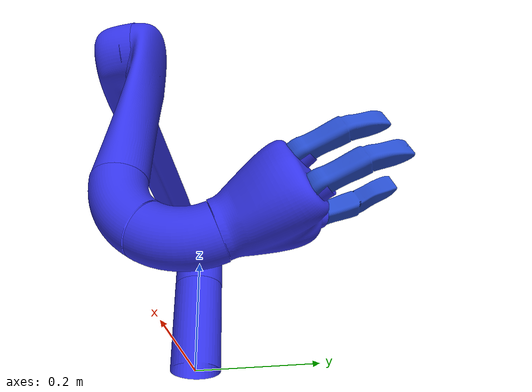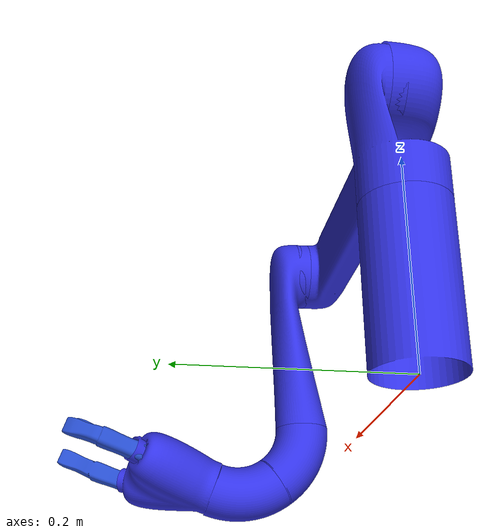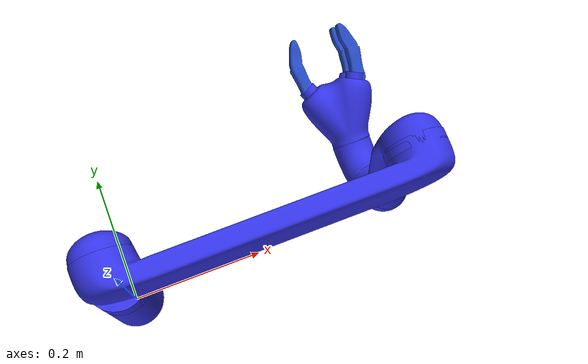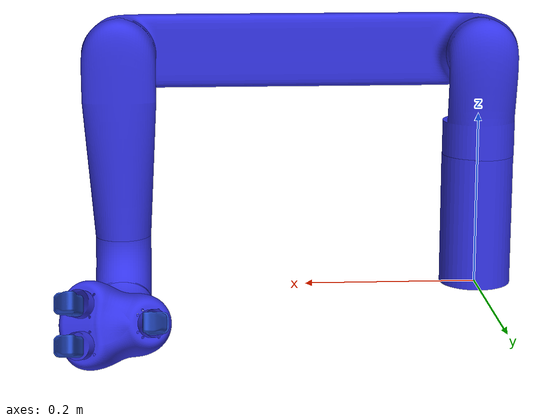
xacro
<?xml version="1.0"?>
<robot
	xmlns:xacro="http://ros.org/wiki/xacro"
	name="jaco_standalone">

  	<link name="base_link"></link>

	  <joint name="base_joint" type="fixed">
		    <parent link="base_link" />
		    <child link="jaco_base_link" />
		    <origin xyz="0 0 0" />
	  </joint>

	<include filename="$(find jaco_description)/urdf/gazebo/jaco.urdf.xacro" />

</robot>

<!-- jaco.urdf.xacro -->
<robot name="jaco"
  xmlns:xacro="http://ros.org/wiki/xacro">

 <xacro:property name="inertia" value="1" />
  <xacro:property name="finger_inertia" value="1" />

	<gazebo>

    <plugin name="gazebo_ros_controller_manager" filename="libgazebo_ros_controller_manager.so">
      <alwaysOn>true</alwaysOn>
		<updateRate>1000.0</updateRate>
		<robotParam>robot_description</robotParam>

    </plugin>
	</gazebo>

	<include filename="$(find jaco_description)/urdf/gazebo/jaco.gazebo.xacro" />
	<include filename="$(find jaco_description)/urdf/gazebo/jaco.transmissions.xacro" />

	<material name="JacoGrey">
	<color rgba="0.2 0.2 0.9 1.0"/>
	</material>

	<!-- The base joint & link -->

	<link name="jaco_base_link">
		<inertial>
			<mass value="1" />
			<!--origin xyz="0 0 -0.0525" rpy="0 0 0"/-->
          		<origin xyz="0 0 0.0" rpy="0 0 0"/>
			<inertia ixx="${inertia}"  ixy="0"  ixz="0" iyy="${inertia}" iyz="0" izz="${inertia}" />
		</inertial>
		<visual>
			<material name="JacoGrey" />
			<!--origin xyz="0 0 -0.0525" rpy="0 0 0"/-->
			<geometry>
				<mesh filename="package://jaco_description/meshes/joint_1.stl"
				scale="0.001 0.001 0.001"/>
			</geometry>
		</visual>
		<collision>
			<!--origin xyz="0 0 -0.0525" rpy="0 0 0"/-->
			<geometry>
				<mesh filename="package://jaco_description/meshes/joint_1.stl"
				scale="0.001 0.001 0.001"/>
			</geometry>
		</collision>
	</link>
	<gazebo reference="jaco_base_link">
		<material>Gazebo/Yellow</material>
		<turnGravityOff>true</turnGravityOff>
	</gazebo>

	<!-- First revolute joint & link -->

	<joint name="jaco_joint_1" type="revolute">
		<!--origin xyz="0 0 0.2102" rpy="0 0 0"/-->
        	<origin xyz="0 0 0.2725" rpy="0 0 0"/>
		<axis xyz="0 0 -1" rpy="0 0 0"/>
		<parent link="jaco_base_link"/>
		<child link="jaco_link_1"/>
		<limit lower="-3.1415926535897931" upper="3.1415926535897931" effort="30" velocity="5"/>
	</joint>
	<link name="jaco_link_1">
		<inertial>
			<mass value="1" />

			<inertia ixx="${inertia}"  ixy="0"  ixz="0" iyy="${inertia}" iyz="0" izz="${inertia}" />
			<origin/>
		</inertial>
		<visual>
			<material name="JacoGrey" />
			<origin xyz="0 0 -0.12" rpy="0 0 -1.570796327"/>
			<geometry>
				<mesh filename="package://jaco_description/meshes/joint_2.stl"
				scale="0.001 0.001 0.001"/>
			</geometry>
		</visual>
		<collision>
			<origin xyz="0 0 -0.12" rpy="0 0 -1.570796327"/>
			<geometry>
				<mesh filename="package://jaco_description/meshes/joint_2.stl"
				scale="0.001 0.001 0.001"/>
			</geometry>
		</collision>
	</link>
	<gazebo reference="jaco_link_1">
		<material>Gazebo/Red</material>
		<turnGravityOff>true</turnGravityOff>
	</gazebo>

	<!-- Second revolute joint & link -->

	<joint name="jaco_joint_2" type="revolute">
		<origin xyz="0 0 0" rpy="-1.570796327 0 0"/>
		<axis xyz="0 0 1"/>
		<parent link="jaco_link_1"/>
		<child link="jaco_link_2"/>
		<limit lower="-3.6651914291881" upper="0.57595865315813" effort="30" velocity="5"/>
	</joint>
	<link name="jaco_link_2">
		<inertial>
			<mass value="1" />
			<inertia ixx="${inertia}"  ixy="0"  ixz="0" iyy="${inertia}" iyz="0" izz="${inertia}" />
			<origin/>
		</inertial>
		<visual>
			<material name="JacoGrey" />
			<origin xyz="0 0 0.015" rpy="0 1.570796327 0"/>
			<geometry>
				<mesh filename="package://jaco_description/meshes/joint_3.stl"
				scale="0.001 0.001 0.001"/>
			</geometry>
		</visual>
		<collision>
			<origin xyz="0 0 0.015" rpy="0 1.570796327 0"/>
			<geometry>
				<mesh filename="package://jaco_description/meshes/joint_3.stl"
				scale="0.001 0.001 0.001"/>
			</geometry>
		</collision>
	</link>
	<gazebo reference="jaco_link_2">
		<material>Gazebo/Blue</material>
		<turnGravityOff>true</turnGravityOff>
	</gazebo>

	<!-- Third revolute joint & link -->

	<joint name="jaco_joint_3" type="revolute">
		<origin xyz="0.4100 0 0.012" rpy="0 0 0"/>
		<axis xyz="0 0 -1"/>
		<parent link="jaco_link_2"/>
		<child link="jaco_link_3"/>
		<limit lower="-1.221730476396" upper="4.2935099599061" effort="30" velocity="5"/>
	</joint>
	<link name="jaco_link_3">
		<inertial>
			<mass value="1" />
			<inertia ixx="${inertia}"  ixy="0"  ixz="0" iyy="${inertia}" iyz="0" izz="${inertia}" />
			<origin/>
		</inertial>
		<visual>
			<material name="JacoGrey" />
			<origin xyz="0 0 -0.012" rpy="0 1.570796327 1.570796327"/>
			<geometry>
				<mesh filename="package://jaco_description/meshes/joint_4.stl"
				scale="1.000 1.000 1.000"/>
			</geometry>
		</visual>
		<collision>
			<origin xyz="0 0 -0.012" rpy="0 1.570796327 1.570796327"/>
			<geometry>
				<mesh filename="package://jaco_description/meshes/joint_4.stl"
				scale="1.000 1.000 1.000"/>
			</geometry>
		</collision>
	</link>
	<gazebo reference="jaco_link_3">
		<material>Gazebo/Red</material>
		<turnGravityOff>true</turnGravityOff>
	</gazebo>

	<!-- Fourth revolute joint & link -->
	<joint name="jaco_joint_4" type="revolute">
		<origin xyz="0 0.24927682300748782 0 " rpy="-1.570796327 0 0"/>
		<axis xyz="0 0 -1"/>
		<parent link="jaco_link_3"/>
		<child link="jaco_link_4"/>
		<limit lower="-3.1415926535897931" upper="3.1415926535897931" effort="30" velocity="5"/>
	</joint>
	<link name="jaco_link_4">
		<inertial>
			<mass value="1" />
			<inertia ixx="${inertia}"  ixy="0"  ixz="0" iyy="${inertia}" iyz="0" izz="${inertia}" />
			<origin/>
		</inertial>
		<visual>
			<material name="JacoGrey" />
			<origin xyz="0 0 -0.042276823" rpy="0 0 -1.570796327"/>
			<geometry>
				<mesh filename="package://jaco_description/meshes/joint_5.stl"
				scale="0.001 0.001 0.001"/>
			</geometry>
		</visual>
		<collision>
			<origin xyz="0 0 -0.042276823" rpy="0 0 -1.570796327"/>
			<geometry>
				<mesh filename="package://jaco_description/meshes/joint_5.stl"
				scale="0.001 0.001 0.001"/>
			</geometry>
		</collision>
	</link>
	<gazebo reference="jaco_link_4">
		<material>Gazebo/Blue</material>
		<turnGravityOff>true</turnGravityOff>
	</gazebo>

	<!-- Fifth revolute joint & link -->
	<joint name="jaco_joint_5" type="revolute">
		<origin xyz="0 -0.069262292 0.048497979" rpy="0.959931089 0 0"/>
		<axis xyz="0 0 -1"/>
		<parent link="jaco_link_4"/>
		<child link="jaco_link_5"/>
		<limit lower="-3.1415926535897931" upper="3.1415926535897931" effort="30" velocity="5"/>
	</joint>
	<link name="jaco_link_5">
		<inertial>
			<mass value="1.0"/>
			<inertia ixx="${inertia}"  ixy="0"  ixz="0" iyy="${inertia}" iyz="0" izz="${inertia}" />
			<origin/>
		</inertial>
		<visual>
			<material name="JacoGrey" />
			<origin xyz="0 0 -0.042276823" rpy="0 -0.959931089 1.570796327"/>
			<geometry>
				<mesh filename="package://jaco_description/meshes/joint_6.stl"
				scale="0.001 0.001 0.001"/>
			</geometry>
		</visual>
		<collision>
			<origin xyz="0 0 -0.042276823" rpy="0 -0.959931089 1.570796327"/>
			<geometry>
				<mesh filename="package://jaco_description/meshes/joint_6.stl"
				scale="0.001 0.001 0.001"/>
			</geometry>
		</collision>
	</link>
	<gazebo reference="jaco_link_5">
		<material>Gazebo/Red</material>
		<turnGravityOff>true</turnGravityOff>
	</gazebo>

	<!-- Sixth revolute joint & link -->
	<joint name="jaco_joint_6" type="revolute">
		<!--origin xyz="0 -0.186174274 0.13036063" rpy="0.959931089 0 0"/-->
		<origin xyz="0 -0.186174274 0.13036063" rpy="-0.959931089 0 3.1415926535897931"/>
		<origin xyz="0 0 0" rpy="0 0 -3.14"/>
		<axis xyz="0 0 -1"/>
		<parent link="jaco_link_5"/>
		<child link="jaco_link_6"/>
		<limit lower="-3.5415926535897931" upper="3.5415926535897931" effort="30" velocity="5"/>
	</joint>
	<link name="jaco_link_6">
		<inertial>
			<mass value="0.3"/>
			<inertia ixx="${inertia}"  ixy="0"  ixz="0" iyy="${inertia}" iyz="0" izz="${inertia}" />
			<origin/>
		</inertial>
		<visual>
			<material name="JacoGrey" />
			<!--origin xyz="0 0 -0.1850" rpy="0 0 -3.1415926535897931"/-->
			<origin xyz="0 0 -0.1850" rpy="0 0 0"/>
			<geometry>
				<mesh filename="package://jaco_description/meshes/hand_with_noFinger.stl"
				scale="0.001 0.001 0.001"/>
			</geometry>
		</visual>
		<collision>
			<!--origin xyz="0 0 -0.1850" rpy="0 0 -3.1415926535897931"/-->
			<origin xyz="0 0 -0.1850" rpy="0 0 0"/>
			<geometry>
				<mesh filename="package://jaco_description/meshes/hand_with_noFinger.stl"
				scale="0.001 0.001 0.001"/>
			</geometry>
		</collision>
	</link>
	<gazebo reference="jaco_link_6">
		<material>Gazebo/Blue</material>
		<turnGravityOff>true</turnGravityOff>
	</gazebo>

     <joint name="jaco_gripper_tool_frame_joint" type="fixed">
      <parent link="jaco_link_6"/>
      <child link="jaco_gripper_tool_frame" />
      <origin xyz="0 0 -0.08" rpy="-0.2 ${-M_PI/2} ${M_PI/2}"/>
    </joint>

    <link name="jaco_gripper_tool_frame">
      <!-- This is the coordinate system of the tool (this is the position
         used in IK etc., relative to the base frame); there is no actual
         arm part attached to this link -->
  </link>

	<!-- first finger joint & link -->
   	<joint name="jaco_finger_joint_1" type="revolute">
        <!--origin xyz="-0.036 -0.021 -0.07" rpy="0 0 0"/--> <!-- changed becuase it look funny in simulation-->
        <origin xyz="-0.036 -0.021 -0.09" rpy="0 0 0"/>
        <axis xyz="0 1 0"/>
        <parent link="jaco_link_6"/>
        <child link="jaco_finger_link_1"/>
		<limit lower="-3.1415926535897931" upper="3.1415926535897931" effort="30" velocity="5"/>
      </joint>

    <link name="jaco_finger_link_1">
		<inertial>
			<mass value="0.05"/>
			<inertia ixx="${finger_inertia}"  ixy="0"  ixz="0" iyy="${finger_inertia}" iyz="0" izz="${finger_inertia}" />
			<origin/>
		</inertial>

   <visual>
			<origin xyz="0 0 0" rpy="0 0 0"/>
          <geometry>
            <mesh filename="package://jaco_description/meshes/finger.stl"
                scale="1 1 1"/>
          </geometry>
    </visual>

	<collision>
			<origin xyz="0 0 0" rpy="0 0 0"/>
	<geometry>
        <mesh filename="package://jaco_description/meshes/finger.stl"
                scale="1 1 1"/>
	</geometry>

	</collision>

      </link>
	<gazebo reference="jaco_finger_link_1">
		<material>Gazebo/Blue</material>
		<turnGravityOff>true</turnGravityOff>
	</gazebo>

	<!-- second finger joint & link -->
   	<joint name="jaco_finger_joint_2" type="revolute">
        <!--origin xyz="-0.036 0.021 -0.07" rpy="0 0 0"/-->
	<origin xyz="-0.036 0.021 -0.09" rpy="0 0 0"/>
        <axis xyz="0 1 0"/>
        <parent link="jaco_link_6"/>
        <child link="jaco_finger_link_2"/>
		<limit lower="-3.1415926535897931" upper="3.1415926535897931" effort="30" velocity="5"/>
      </joint>
      <link name="jaco_finger_link_2">
		<inertial>
			<mass value="0.05"/>
			<inertia ixx="${finger_inertia}"  ixy="0"  ixz="0" iyy="${finger_inertia}" iyz="0" izz="${finger_inertia}" />
			<origin/>
		</inertial>
        <visual>
			<origin xyz="0 0 0" rpy="0 0 0"/>
          <geometry>
            <mesh filename="package://jaco_description/meshes/finger.stl"
                scale="1 1 1"/>
          </geometry>
        </visual>
	<collision>
			<origin xyz="0 0 0" rpy="0 0 0"/>
	<geometry>
            <mesh filename="package://jaco_description/meshes/finger.stl"
                scale="1 1 1"/>
	</geometry>
	</collision>
        </link>
	<gazebo reference="jaco_finger_link_2">
		<material>Gazebo/Blue</material>
		<turnGravityOff>true</turnGravityOff>
	</gazebo>

	<!-- third finger joint & link -->
   	<joint name="jaco_finger_joint_3" type="revolute">
        <!--origin xyz="0.036 -0 -0.07" rpy="0 0 3.14"/-->
	<origin xyz="0.036 -0 -0.09" rpy="0 0 3.14"/>
        <axis xyz="0 1 0"/>
        <parent link="jaco_link_6"/>
        <child link="jaco_finger_link_3"/>
		<limit lower="-3.1415926535897931" upper="3.1415926535897931" effort="30" velocity="5"/>
      </joint>
      <link name="jaco_finger_link_3">
		<inertial>
			<mass value="0.05"/>
			<inertia ixx="${finger_inertia}"  ixy="0"  ixz="0" iyy="${finger_inertia}" iyz="0" izz="${finger_inertia}" />
			<origin/>
		</inertial>
        <visual>
			<origin xyz="0 0 0" rpy="0 0 0"/>
          <geometry>
            <mesh filename="package://jaco_description/meshes/finger.stl"
                scale="1 1 1"/>
          </geometry>
        </visual>
	<collision>
			<origin xyz="0 0 0" rpy="0 0 0"/>
	<geometry>
            <mesh filename="package://jaco_description/meshes/finger.stl"
                scale="1 1 1"/>
	</geometry>
	</collision>
      </link>
	<gazebo reference="jaco_finger_link_3">
		<material>Gazebo/Blue</material>
		<turnGravityOff>true</turnGravityOff>
	</gazebo>

</robot>
